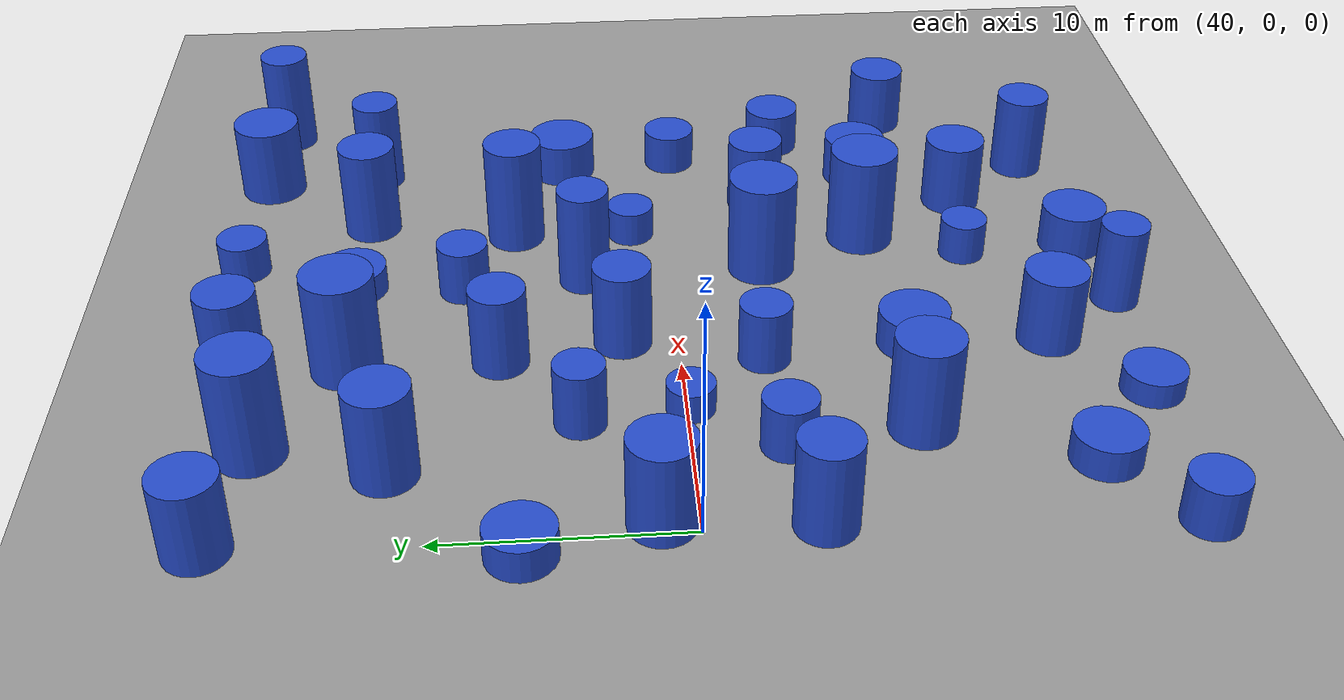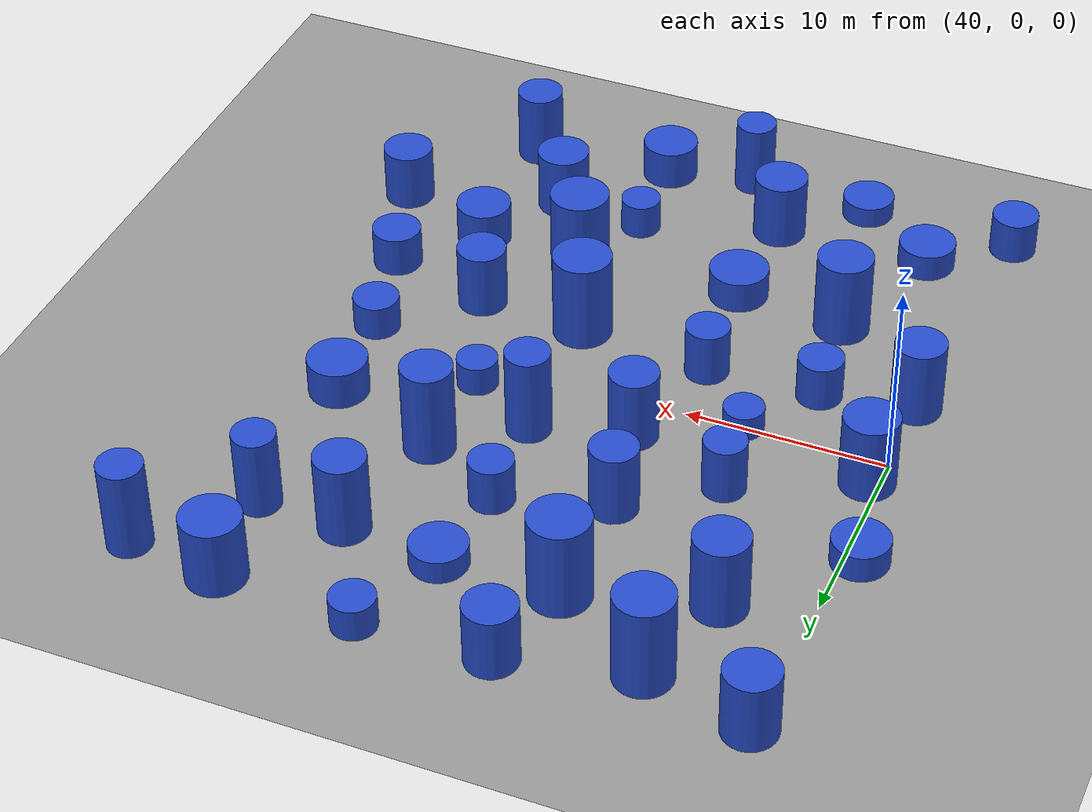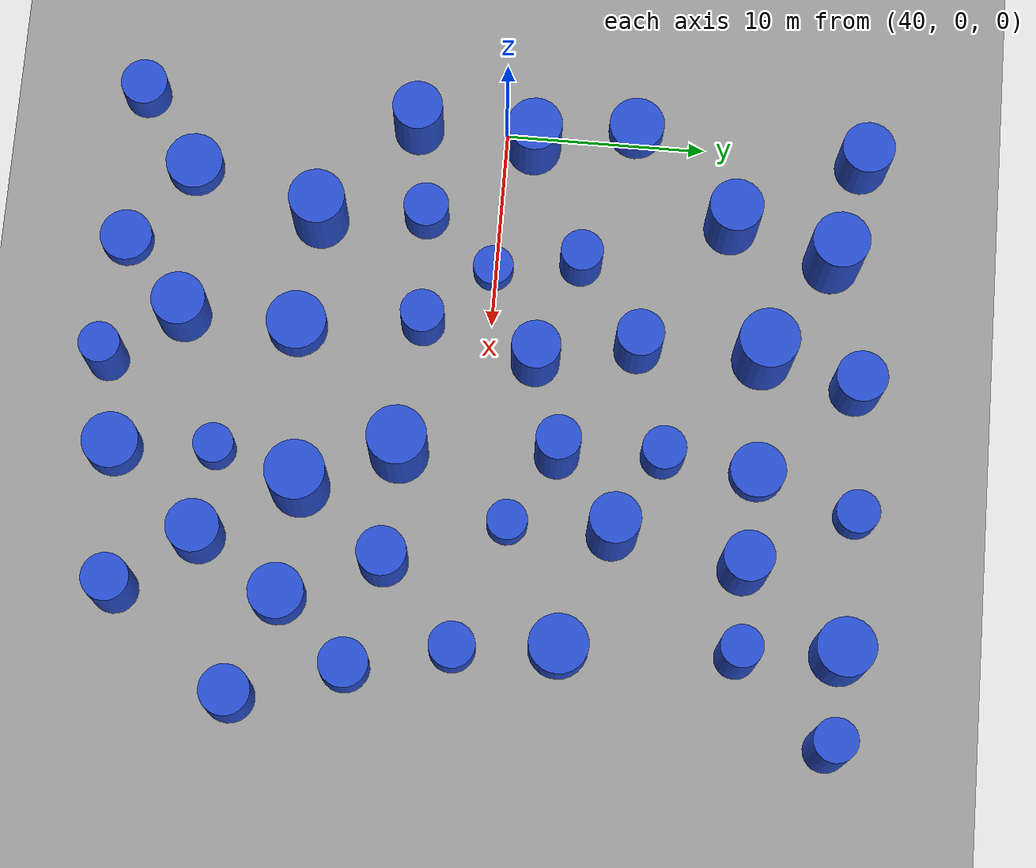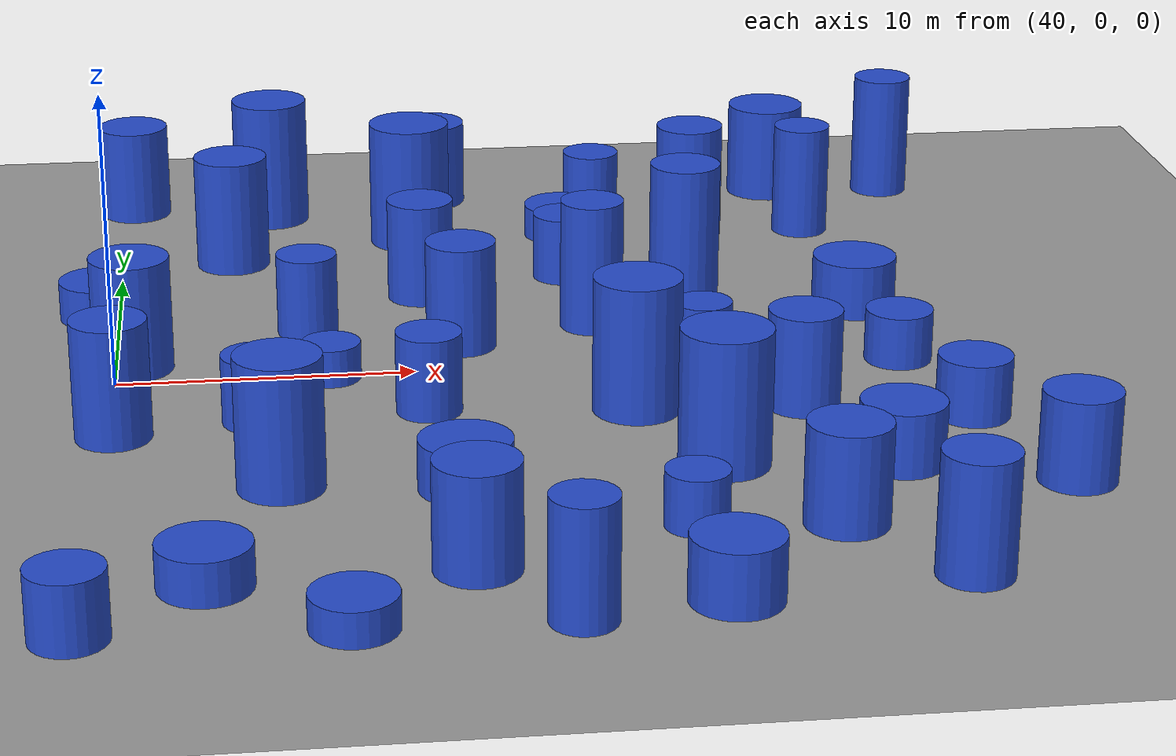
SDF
<sdf version="1.7">
 <world name="default">
  <model name="ground_plane_map">
   <static>1</static>
   <link name="link">
    <collision name="collision">
     <geometry><plane><normal>0 0 1</normal><size>110 50</size></plane></geometry>
     <surface>
      <contact><collide_without_contact>1</collide_without_contact></contact>
      <friction><ode><mu>100</mu><mu2>50</mu2></ode></friction>
     </surface>
    </collision>
    <visual name="visual">
     <cast_shadows>0</cast_shadows>
     <geometry><plane><normal>0 0 1</normal><size>110 50</size></plane></geometry>
     <material>
      <script><uri>file://media/materials/scripts/gazebo.material</uri><name>Gazebo/Grey</name></script>
     </material>
    </visual>
   </link>
   <pose>53 0 0 0 -0 0</pose>
  </model>
  <model name="0">
   <static>1</static>
   <link name="link">
    <inertial>
     <mass>2</mass>
     <inertia><ixx>4.14481</ixx><ixy>0</ixy><ixz>0</ixz><iyy>4.14481</iyy><iyz>0</iyz><izz>1.90158</izz></inertia>
    </inertial>
    <collision name="collision">
     <geometry><cylinder><length>4.37769</length><radius>1.37898</radius></cylinder></geometry>
     <surface><contact><collide_without_contact>1</collide_without_contact></contact></surface>
    </collision>
    <visual name="visual">
     <geometry><cylinder><length>4.37769</length><radius>1.37898</radius></cylinder></geometry>
     <material>
      <script><uri>file://media/materials/scripts/gazebo.material</uri><name>Gazebo/Blue</name></script>
     </material>
    </visual>
    <gravity>0</gravity>
   </link>
   <pose>45.2762 -8.97843 2.18884 0 -0 0</pose>
  </model>
  <model name="3">
   <static>1</static>
   <link name="link">
    <inertial>
     <mass>2</mass>
     <inertia><ixx>1.70358</ixx><ixy>0</ixy><ixz>0</ixz><iyy>1.70358</iyy><iyz>0</iyz><izz>1.89861</izz></inertia>
    </inertial>
    <collision name="collision">
     <geometry><cylinder><length>2.12735</length><radius>1.3779</radius></cylinder></geometry>
     <surface><contact><collide_without_contact>1</collide_without_contact></contact></surface>
    </collision>
    <visual name="visual">
     <geometry><cylinder><length>2.12735</length><radius>1.3779</radius></cylinder></geometry>
     <material>
      <script><uri>file://media/materials/scripts/gazebo.material</uri><name>Gazebo/Blue</name></script>
     </material>
    </visual>
    <gravity>0</gravity>
   </link>
   <pose>64.5107 -9.29219 1.06368 0 -0 0</pose>
  </model>
  <model name="6">
   <static>1</static>
   <link name="link">
    <inertial>
     <mass>2</mass>
     <inertia><ixx>1.94226</ixx><ixy>0</ixy><ixz>0</ixz><iyy>1.94226</iyy><iyz>0</iyz><izz>1.10324</izz></inertia>
    </inertial>
    <collision name="collision">
     <geometry><cylinder><length>2.88857</length><radius>1.05035</radius></cylinder></geometry>
     <surface><contact><collide_without_contact>1</collide_without_contact></contact></surface>
    </collision>
    <visual name="visual">
     <geometry><cylinder><length>2.88857</length><radius>1.05035</radius></cylinder></geometry>
     <material>
      <script><uri>file://media/materials/scripts/gazebo.material</uri><name>Gazebo/Blue</name></script>
     </material>
    </visual>
    <gravity>0</gravity>
   </link>
   <pose>46.5555 4.20254 1.44429 0 -0 0</pose>
  </model>
  <model name="7">
   <static>1</static>
   <link name="link">
    <inertial>
     <mass>2</mass>
     <inertia><ixx>4.70701</ixx><ixy>0</ixy><ixz>0</ixz><iyy>4.70701</iyy><iyz>0</iyz><izz>2.20019</izz></inertia>
    </inertial>
    <collision name="collision">
     <geometry><cylinder><length>4.65204</length><radius>1.4833</radius></cylinder></geometry>
     <surface><contact><collide_without_contact>1</collide_without_contact></contact></surface>
    </collision>
    <visual name="visual">
     <geometry><cylinder><length>4.65204</length><radius>1.4833</radius></cylinder></geometry>
     <material>
      <script><uri>file://media/materials/scripts/gazebo.material</uri><name>Gazebo/Blue</name></script>
     </material>
    </visual>
    <gravity>0</gravity>
   </link>
   <pose>50.7692 13.5287 2.32602 0 -0 0</pose>
  </model>
  <model name="8">
   <static>1</static>
   <link name="link">
    <inertial>
     <mass>2</mass>
     <inertia><ixx>1.67846</ixx><ixy>0</ixy><ixz>0</ixz><iyy>1.67846</iyy><iyz>0</iyz><izz>1.96705</izz></inertia>
    </inertial>
    <collision name="collision">
     <geometry><cylinder><length>2.04197</length><radius>1.40251</radius></cylinder></geometry>
     <surface><contact><collide_without_contact>1</collide_without_contact></contact></surface>
    </collision>
    <visual name="visual">
     <geometry><cylinder><length>2.04197</length><radius>1.40251</radius></cylinder></geometry>
     <material>
      <script><uri>file://media/materials/scripts/gazebo.material</uri><name>Gazebo/Blue</name></script>
     </material>
    </visual>
    <gravity>0</gravity>
   </link>
   <pose>57.7333 -18.0752 1.02099 0 -0 0</pose>
  </model>
  <model name="15">
   <static>1</static>
   <link name="link">
    <inertial>
     <mass>2</mass>
     <inertia><ixx>2.61819</ixx><ixy>0</ixy><ixz>0</ixz><iyy>2.61819</iyy><iyz>0</iyz><izz>1.49449</izz></inertia>
    </inertial>
    <collision name="collision">
     <geometry><cylinder><length>3.35047</length><radius>1.22249</radius></cylinder></geometry>
     <surface><contact><collide_without_contact>1</collide_without_contact></contact></surface>
    </collision>
    <visual name="visual">
     <geometry><cylinder><length>3.35047</length><radius>1.22249</radius></cylinder></geometry>
     <material>
      <script><uri>file://media/materials/scripts/gazebo.material</uri><name>Gazebo/Blue</name></script>
     </material>
    </visual>
    <gravity>0</gravity>
   </link>
   <pose>62.3933 -4.32254 1.67523 0 -0 0</pose>
  </model>
  <model name="17">
   <static>1</static>
   <link name="link">
    <inertial>
     <mass>2</mass>
     <inertia><ixx>2.86724</ixx><ixy>0</ixy><ixz>0</ixz><iyy>2.86724</iyy><iyz>0</iyz><izz>1.76446</izz></inertia>
    </inertial>
    <collision name="collision">
     <geometry><cylinder><length>3.45109</length><radius>1.32833</radius></cylinder></geometry>
     <surface><contact><collide_without_contact>1</collide_without_contact></contact></surface>
    </collision>
    <visual name="visual">
     <geometry><cylinder><length>3.45109</length><radius>1.32833</radius></cylinder></geometry>
     <material>
      <script><uri>file://media/materials/scripts/gazebo.material</uri><name>Gazebo/Blue</name></script>
     </material>
    </visual>
    <gravity>0</gravity>
   </link>
   <pose>50.7154 -15.3173 1.72555 0 -0 0</pose>
  </model>
  <model name="19">
   <static>1</static>
   <link name="link">
    <inertial>
     <mass>2</mass>
     <inertia><ixx>4.58352</ixx><ixy>0</ixy><ixz>0</ixz><iyy>4.58352</iyy><iyz>0</iyz><izz>2.1361</izz></inertia>
    </inertial>
    <collision name="collision">
     <geometry><cylinder><length>4.59269</length><radius>1.46154</radius></cylinder></geometry>
     <surface><contact><collide_without_contact>1</collide_without_contact></contact></surface>
    </collision>
    <visual name="visual">
     <geometry><cylinder><length>4.59269</length><radius>1.46154</radius></cylinder></geometry>
     <material>
      <script><uri>file://media/materials/scripts/gazebo.material</uri><name>Gazebo/Blue</name></script>
     </material>
    </visual>
    <gravity>0</gravity>
   </link>
   <pose>56.9413 -4.03041 2.29635 0 -0 0</pose>
  </model>
  <model name="21">
   <static>1</static>
   <link name="link">
    <inertial>
     <mass>2</mass>
     <inertia><ixx>3.44477</ixx><ixy>0</ixy><ixz>0</ixz><iyy>3.44477</iyy><iyz>0</iyz><izz>1.08407</izz></inertia>
    </inertial>
    <collision name="collision">
     <geometry><cylinder><length>4.1733</length><radius>1.04119</radius></cylinder></geometry>
     <surface><contact><collide_without_contact>1</collide_without_contact></contact></surface>
    </collision>
    <visual name="visual">
     <geometry><cylinder><length>4.1733</length><radius>1.04119</radius></cylinder></geometry>
     <material>
      <script><uri>file://media/materials/scripts/gazebo.material</uri><name>Gazebo/Blue</name></script>
     </material>
    </visual>
    <gravity>0</gravity>
   </link>
   <pose>65.7437 13.0845 2.08665 0 -0 0</pose>
  </model>
  <model name="26">
   <static>1</static>
   <link name="link">
    <inertial>
     <mass>2</mass>
     <inertia><ixx>2.93772</ixx><ixy>0</ixy><ixz>0</ixz><iyy>2.93772</iyy><iyz>0</iyz><izz>1.69825</izz></inertia>
    </inertial>
    <collision name="collision">
     <geometry><cylinder><length>3.54</length><radius>1.30317</radius></cylinder></geometry>
     <surface><contact><collide_without_contact>1</collide_without_contact></contact></surface>
    </collision>
    <visual name="visual">
     <geometry><cylinder><length>3.54</length><radius>1.30317</radius></cylinder></geometry>
     <material>
      <script><uri>file://media/materials/scripts/gazebo.material</uri><name>Gazebo/Blue</name></script>
     </material>
    </visual>
    <gravity>0</gravity>
   </link>
   <pose>40.3525 17.9683 1.77 0 -0 0</pose>
  </model>
  <model name="32">
   <static>1</static>
   <link name="link">
    <inertial>
     <mass>2</mass>
     <inertia><ixx>4.22923</ixx><ixy>0</ixy><ixz>0</ixz><iyy>4.22923</iyy><iyz>0</iyz><izz>1.1766</izz></inertia>
    </inertial>
    <collision name="collision">
     <geometry><cylinder><length>4.67393</length><radius>1.08471</radius></cylinder></geometry>
     <surface><contact><collide_without_contact>1</collide_without_contact></contact></surface>
    </collision>
    <visual name="visual">
     <geometry><cylinder><length>4.67393</length><radius>1.08471</radius></cylinder></geometry>
     <material>
      <script><uri>file://media/materials/scripts/gazebo.material</uri><name>Gazebo/Blue</name></script>
     </material>
    </visual>
    <gravity>0</gravity>
   </link>
   <pose>69.8895 17.6498 2.33696 0 -0 0</pose>
  </model>
  <model name="34">
   <static>1</static>
   <link name="link">
    <inertial>
     <mass>2</mass>
     <inertia><ixx>1.86936</ixx><ixy>0</ixy><ixz>0</ixz><iyy>1.86936</iyy><iyz>0</iyz><izz>1.18246</izz></inertia>
    </inertial>
    <collision name="collision">
     <geometry><cylinder><length>2.76926</length><radius>1.08741</radius></cylinder></geometry>
     <surface><contact><collide_without_contact>1</collide_without_contact></contact></surface>
    </collision>
    <visual name="visual">
     <geometry><cylinder><length>2.76926</length><radius>1.08741</radius></cylinder></geometry>
     <material>
      <script><uri>file://media/materials/scripts/gazebo.material</uri><name>Gazebo/Blue</name></script>
     </material>
    </visual>
    <gravity>0</gravity>
   </link>
   <pose>50.2243 -3.40785 1.38463 0 -0 0</pose>
  </model>
  <model name="37">
   <static>1</static>
   <link name="link">
    <inertial>
     <mass>2</mass>
     <inertia><ixx>1.73073</ixx><ixy>0</ixy><ixz>0</ixz><iyy>1.73073</iyy><iyz>0</iyz><izz>2.18024</izz></inertia>
    </inertial>
    <collision name="collision">
     <geometry><cylinder><length>1.96052</length><radius>1.47656</radius></cylinder></geometry>
     <surface><contact><collide_without_contact>1</collide_without_contact></contact></surface>
    </collision>
    <visual name="visual">
     <geometry><cylinder><length>1.96052</length><radius>1.47656</radius></cylinder></geometry>
     <material>
      <script><uri>file://media/materials/scripts/gazebo.material</uri><name>Gazebo/Blue</name></script>
     </material>
    </visual>
    <gravity>0</gravity>
   </link>
   <pose>65.9798 4.48552 0.980261 0 -0 0</pose>
  </model>
  <model name="39">
   <static>1</static>
   <link name="link">
    <inertial>
     <mass>2</mass>
     <inertia><ixx>1.53761</ixx><ixy>0</ixy><ixz>0</ixz><iyy>1.53761</iyy><iyz>0</iyz><izz>1.25375</izz></inertia>
    </inertial>
    <collision name="collision">
     <geometry><cylinder><length>2.33761</length><radius>1.11971</radius></cylinder></geometry>
     <surface><contact><collide_without_contact>1</collide_without_contact></contact></surface>
    </collision>
    <visual name="visual">
     <geometry><cylinder><length>2.33761</length><radius>1.11971</radius></cylinder></geometry>
     <material>
      <script><uri>file://media/materials/scripts/gazebo.material</uri><name>Gazebo/Blue</name></script>
     </material>
    </visual>
    <gravity>0</gravity>
   </link>
   <pose>44.6323 -3.69045 1.1688 0 -0 0</pose>
  </model>
  <model name="40">
   <static>1</static>
   <link name="link">
    <inertial>
     <mass>2</mass>
     <inertia><ixx>3.14692</ixx><ixy>0</ixy><ixz>0</ixz><iyy>3.14692</iyy><iyz>0</iyz><izz>1.46195</izz></inertia>
    </inertial>
    <collision name="collision">
     <geometry><cylinder><length>3.80732</length><radius>1.20911</radius></cylinder></geometry>
     <surface><contact><collide_without_contact>1</collide_without_contact></contact></surface>
    </collision>
    <visual name="visual">
     <geometry><cylinder><length>3.80732</length><radius>1.20911</radius></cylinder></geometry>
     <material>
      <script><uri>file://media/materials/scripts/gazebo.material</uri><name>Gazebo/Blue</name></script>
     </material>
    </visual>
    <gravity>0</gravity>
   </link>
   <pose>51.7574 2.30771 1.90366 0 -0 0</pose>
  </model>
  <model name="44">
   <static>1</static>
   <link name="link">
    <inertial>
     <mass>2</mass>
     <inertia><ixx>1.34512</ixx><ixy>0</ixy><ixz>0</ixz><iyy>1.34512</iyy><iyz>0</iyz><izz>2.03624</izz></inertia>
    </inertial>
    <collision name="collision">
     <geometry><cylinder><length>1.40072</length><radius>1.42697</radius></cylinder></geometry>
     <surface><contact><collide_without_contact>1</collide_without_contact></contact></surface>
    </collision>
    <visual name="visual">
     <geometry><cylinder><length>1.40072</length><radius>1.42697</radius></cylinder></geometry>
     <material>
      <script><uri>file://media/materials/scripts/gazebo.material</uri><name>Gazebo/Blue</name></script>
     </material>
    </visual>
    <gravity>0</gravity>
   </link>
   <pose>42.9644 -15.5514 0.700361 0 -0 0</pose>
  </model>
  <model name="45">
   <static>1</static>
   <link name="link">
    <inertial>
     <mass>2</mass>
     <inertia><ixx>1.48634</ixx><ixy>0</ixy><ixz>0</ixz><iyy>1.48634</iyy><iyz>0</iyz><izz>1.50428</izz></inertia>
    </inertial>
    <collision name="collision">
     <geometry><cylinder><length>2.09886</length><radius>1.22649</radius></cylinder></geometry>
     <surface><contact><collide_without_contact>1</collide_without_contact></contact></surface>
    </collision>
    <visual name="visual">
     <geometry><cylinder><length>2.09886</length><radius>1.22649</radius></cylinder></geometry>
     <material>
      <script><uri>file://media/materials/scripts/gazebo.material</uri><name>Gazebo/Blue</name></script>
     </material>
    </visual>
    <gravity>0</gravity>
   </link>
   <pose>67.7085 -5.7427 1.04943 0 -0 0</pose>
  </model>
  <model name="48">
   <static>1</static>
   <link name="link">
    <inertial>
     <mass>2</mass>
     <inertia><ixx>3.5742</ixx><ixy>0</ixy><ixz>0</ixz><iyy>3.5742</iyy><iyz>0</iyz><izz>1.82429</izz></inertia>
    </inertial>
    <collision name="collision">
     <geometry><cylinder><length>3.99654</length><radius>1.35066</radius></cylinder></geometry>
     <surface><contact><collide_without_contact>1</collide_without_contact></contact></surface>
    </collision>
    <visual name="visual">
     <geometry><cylinder><length>3.99654</length><radius>1.35066</radius></cylinder></geometry>
     <material>
      <script><uri>file://media/materials/scripts/gazebo.material</uri><name>Gazebo/Blue</name></script>
     </material>
    </visual>
    <gravity>0</gravity>
   </link>
   <pose>40.5895 1.41469 1.99827 0 -0 0</pose>
  </model>
  <model name="50">
   <static>1</static>
   <link name="link">
    <inertial>
     <mass>2</mass>
     <inertia><ixx>3.18474</ixx><ixy>0</ixy><ixz>0</ixz><iyy>3.18474</iyy><iyz>0</iyz><izz>1.36686</izz></inertia>
    </inertial>
    <collision name="collision">
     <geometry><cylinder><length>3.874</length><radius>1.16913</radius></cylinder></geometry>
     <surface><contact><collide_without_contact>1</collide_without_contact></contact></surface>
    </collision>
    <visual name="visual">
     <geometry><cylinder><length>3.874</length><radius>1.16913</radius></cylinder></geometry>
     <material>
      <script><uri>file://media/materials/scripts/gazebo.material</uri><name>Gazebo/Blue</name></script>
     </material>
    </visual>
    <gravity>0</gravity>
   </link>
   <pose>64.772 -17.2791 1.937 0 -0 0</pose>
  </model>
  <model name="51">
   <static>1</static>
   <link name="link">
    <inertial>
     <mass>2</mass>
     <inertia><ixx>1.56822</ixx><ixy>0</ixy><ixz>0</ixz><iyy>1.56822</iyy><iyz>0</iyz><izz>2.22295</izz></inertia>
    </inertial>
    <collision name="collision">
     <geometry><cylinder><length>1.65544</length><radius>1.49096</radius></cylinder></geometry>
     <surface><contact><collide_without_contact>1</collide_without_contact></contact></surface>
    </collision>
    <visual name="visual">
     <geometry><cylinder><length>1.65544</length><radius>1.49096</radius></cylinder></geometry>
     <material>
      <script><uri>file://media/materials/scripts/gazebo.material</uri><name>Gazebo/Blue</name></script>
     </material>
    </visual>
    <gravity>0</gravity>
   </link>
   <pose>50.8719 -9.63558 0.827721 0 -0 0</pose>
  </model>
  <model name="58">
   <static>1</static>
   <link name="link">
    <inertial>
     <mass>2</mass>
     <inertia><ixx>2.27417</ixx><ixy>0</ixy><ixz>0</ixz><iyy>2.27417</iyy><iyz>0</iyz><izz>1.56081</izz></inertia>
    </inertial>
    <collision name="collision">
     <geometry><cylinder><length>2.99376</length><radius>1.24932</radius></cylinder></geometry>
     <surface><contact><collide_without_contact>1</collide_without_contact></contact></surface>
    </collision>
    <visual name="visual">
     <geometry><cylinder><length>2.99376</length><radius>1.24932</radius></cylinder></geometry>
     <material>
      <script><uri>file://media/materials/scripts/gazebo.material</uri><name>Gazebo/Blue</name></script>
     </material>
    </visual>
    <gravity>0</gravity>
   </link>
   <pose>69.5819 -11.1757 1.49688 0 -0 0</pose>
  </model>
  <model name="61">
   <static>1</static>
   <link name="link">
    <inertial>
     <mass>2</mass>
     <inertia><ixx>4.74433</ixx><ixy>0</ixy><ixz>0</ixz><iyy>4.74433</iyy><iyz>0</iyz><izz>1.56876</izz></inertia>
    </inertial>
    <collision name="collision">
     <geometry><cylinder><length>4.87439</length><radius>1.2525</radius></cylinder></geometry>
     <surface><contact><collide_without_contact>1</collide_without_contact></contact></surface>
    </collision>
    <visual name="visual">
     <geometry><cylinder><length>4.87439</length><radius>1.2525</radius></cylinder></geometry>
     <material>
      <script><uri>file://media/materials/scripts/gazebo.material</uri><name>Gazebo/Blue</name></script>
     </material>
    </visual>
    <gravity>0</gravity>
   </link>
   <pose>60.2022 6.69553 2.4372 0 -0 0</pose>
  </model>
  <model name="63">
   <static>1</static>
   <link name="link">
    <inertial>
     <mass>2</mass>
     <inertia><ixx>4.17057</ixx><ixy>0</ixy><ixz>0</ixz><iyy>4.17057</iyy><iyz>0</iyz><izz>1.21672</izz></inertia>
    </inertial>
    <collision name="collision">
     <geometry><cylinder><length>4.62312</length><radius>1.10305</radius></cylinder></geometry>
     <surface><contact><collide_without_contact>1</collide_without_contact></contact></surface>
    </collision>
    <visual name="visual">
     <geometry><cylinder><length>4.62312</length><radius>1.10305</radius></cylinder></geometry>
     <material>
      <script><uri>file://media/materials/scripts/gazebo.material</uri><name>Gazebo/Blue</name></script>
     </material>
    </visual>
    <gravity>0</gravity>
   </link>
   <pose>56.4635 3.72702 2.31156 0 -0 0</pose>
  </model>
  <model name="64">
   <static>1</static>
   <link name="link">
    <inertial>
     <mass>2</mass>
     <inertia><ixx>3.85583</ixx><ixy>0</ixy><ixz>0</ixz><iyy>3.85583</iyy><iyz>0</iyz><izz>1.54035</izz></inertia>
    </inertial>
    <collision name="collision">
     <geometry><cylinder><length>4.30279</length><radius>1.24111</radius></cylinder></geometry>
     <surface><contact><collide_without_contact>1</collide_without_contact></contact></surface>
    </collision>
    <visual name="visual">
     <geometry><cylinder><length>4.30279</length><radius>1.24111</radius></cylinder></geometry>
     <material>
      <script><uri>file://media/materials/scripts/gazebo.material</uri><name>Gazebo/Blue</name></script>
     </material>
    </visual>
    <gravity>0</gravity>
   </link>
   <pose>61.4244 13.1806 2.15139 0 -0 0</pose>
  </model>
  <model name="65">
   <static>1</static>
   <link name="link">
    <inertial>
     <mass>2</mass>
     <inertia><ixx>3.81159</ixx><ixy>0</ixy><ixz>0</ixz><iyy>3.81159</iyy><iyz>0</iyz><izz>1.76489</izz></inertia>
    </inertial>
    <collision name="collision">
     <geometry><cylinder><length>4.19224</length><radius>1.32849</radius></cylinder></geometry>
     <surface><contact><collide_without_contact>1</collide_without_contact></contact></surface>
    </collision>
    <visual name="visual">
     <geometry><cylinder><length>4.19224</length><radius>1.32849</radius></cylinder></geometry>
     <material>
      <script><uri>file://media/materials/scripts/gazebo.material</uri><name>Gazebo/Blue</name></script>
     </material>
    </visual>
    <gravity>0</gravity>
   </link>
   <pose>44.0516 11.5777 2.09612 0 -0 0</pose>
  </model>
  <model name="76">
   <static>1</static>
   <link name="link">
    <inertial>
     <mass>2</mass>
     <inertia><ixx>1.20703</ixx><ixy>0</ixy><ixz>0</ixz><iyy>1.20703</iyy><iyz>0</iyz><izz>1.31482</izz></inertia>
    </inertial>
    <collision name="collision">
     <geometry><cylinder><length>1.81596</length><radius>1.14666</radius></cylinder></geometry>
     <surface><contact><collide_without_contact>1</collide_without_contact></contact></surface>
    </collision>
    <visual name="visual">
     <geometry><cylinder><length>1.81596</length><radius>1.14666</radius></cylinder></geometry>
     <material>
      <script><uri>file://media/materials/scripts/gazebo.material</uri><name>Gazebo/Blue</name></script>
     </material>
    </visual>
    <gravity>0</gravity>
   </link>
   <pose>66.4155 -0.630155 0.907981 0 -0 0</pose>
  </model>
  <model name="77">
   <static>1</static>
   <link name="link">
    <inertial>
     <mass>2</mass>
     <inertia><ixx>1.04969</ixx><ixy>0</ixy><ixz>0</ixz><iyy>1.04969</iyy><iyz>0</iyz><izz>1.00184</izz></inertia>
    </inertial>
    <collision name="collision">
     <geometry><cylinder><length>1.81456</length><radius>1.00092</radius></cylinder></geometry>
     <surface><contact><collide_without_contact>1</collide_without_contact></contact></surface>
    </collision>
    <visual name="visual">
     <geometry><cylinder><length>1.81456</length><radius>1.00092</radius></cylinder></geometry>
     <material>
      <script><uri>file://media/materials/scripts/gazebo.material</uri><name>Gazebo/Blue</name></script>
     </material>
    </visual>
    <gravity>0</gravity>
   </link>
   <pose>57.4303 -13.063 0.90728 0 -0 0</pose>
  </model>
  <model name="82">
   <static>1</static>
   <link name="link">
    <inertial>
     <mass>2</mass>
     <inertia><ixx>2.67326</ixx><ixy>0</ixy><ixz>0</ixz><iyy>2.67326</iyy><iyz>0</iyz><izz>1.72547</izz></inertia>
    </inertial>
    <collision name="collision">
     <geometry><cylinder><length>3.29593</length><radius>1.31357</radius></cylinder></geometry>
     <surface><contact><collide_without_contact>1</collide_without_contact></contact></surface>
    </collision>
    <visual name="visual">
     <geometry><cylinder><length>3.29593</length><radius>1.31357</radius></cylinder></geometry>
     <material>
      <script><uri>file://media/materials/scripts/gazebo.material</uri><name>Gazebo/Blue</name></script>
     </material>
    </visual>
    <gravity>0</gravity>
   </link>
   <pose>61.867 -13.4717 1.64796 0 -0 0</pose>
  </model>
  <model name="83">
   <static>1</static>
   <link name="link">
    <inertial>
     <mass>2</mass>
     <inertia><ixx>2.94123</ixx><ixy>0</ixy><ixz>0</ixz><iyy>2.94123</iyy><iyz>0</iyz><izz>1.3854</izz></inertia>
    </inertial>
    <collision name="collision">
     <geometry><cylinder><length>3.67303</length><radius>1.17703</radius></cylinder></geometry>
     <surface><contact><collide_without_contact>1</collide_without_contact></contact></surface>
    </collision>
    <visual name="visual">
     <geometry><cylinder><length>3.67303</length><radius>1.17703</radius></cylinder></geometry>
     <material>
      <script><uri>file://media/materials/scripts/gazebo.material</uri><name>Gazebo/Blue</name></script>
     </material>
    </visual>
    <gravity>0</gravity>
   </link>
   <pose>50.7263 7.3295 1.83652 0 -0 0</pose>
  </model>
  <model name="87">
   <static>1</static>
   <link name="link">
    <inertial>
     <mass>2</mass>
     <inertia><ixx>1.28026</ixx><ixy>0</ixy><ixz>0</ixz><iyy>1.28026</iyy><iyz>0</iyz><izz>1.91192</izz></inertia>
    </inertial>
    <collision name="collision">
     <geometry><cylinder><length>1.39492</length><radius>1.38272</radius></cylinder></geometry>
     <surface><contact><collide_without_contact>1</collide_without_contact></contact></surface>
    </collision>
    <visual name="visual">
     <geometry><cylinder><length>1.39492</length><radius>1.38272</radius></cylinder></geometry>
     <material>
      <script><uri>file://media/materials/scripts/gazebo.material</uri><name>Gazebo/Blue</name></script>
     </material>
    </visual>
    <gravity>0</gravity>
   </link>
   <pose>39.2807 6.51166 0.697461 0 -0 0</pose>
  </model>
  <model name="91">
   <static>1</static>
   <link name="link">
    <inertial>
     <mass>2</mass>
     <inertia><ixx>1.57827</ixx><ixy>0</ixy><ixz>0</ixz><iyy>1.57827</iyy><iyz>0</iyz><izz>1.18476</izz></inertia>
    </inertial>
    <collision name="collision">
     <geometry><cylinder><length>2.43214</length><radius>1.08847</radius></cylinder></geometry>
     <surface><contact><collide_without_contact>1</collide_without_contact></contact></surface>
    </collision>
    <visual name="visual">
     <geometry><cylinder><length>2.43214</length><radius>1.08847</radius></cylinder></geometry>
     <material>
      <script><uri>file://media/materials/scripts/gazebo.material</uri><name>Gazebo/Blue</name></script>
     </material>
    </visual>
    <gravity>0</gravity>
   </link>
   <pose>56.0654 8.91251 1.21607 0 -0 0</pose>
  </model>
  <model name="95">
   <static>1</static>
   <link name="link">
    <inertial>
     <mass>2</mass>
     <inertia><ixx>4.81175</ixx><ixy>0</ixy><ixz>0</ixz><iyy>4.81175</iyy><iyz>0</iyz><izz>1.98583</izz></inertia>
    </inertial>
    <collision name="collision">
     <geometry><cylinder><length>4.78676</length><radius>1.40919</radius></cylinder></geometry>
     <surface><contact><collide_without_contact>1</collide_without_contact></contact></surface>
    </collision>
    <visual name="visual">
     <geometry><cylinder><length>4.78676</length><radius>1.40919</radius></cylinder></geometry>
     <material>
      <script><uri>file://media/materials/scripts/gazebo.material</uri><name>Gazebo/Blue</name></script>
     </material>
    </visual>
    <gravity>0</gravity>
   </link>
   <pose>45.6025 16.7238 2.39338 0 -0 0</pose>
  </model>
  <model name="96">
   <static>1</static>
   <link name="link">
    <inertial>
     <mass>2</mass>
     <inertia><ixx>1.06756</ixx><ixy>0</ixy><ixz>0</ixz><iyy>1.06756</iyy><iyz>0</iyz><izz>1.17707</izz></inertia>
    </inertial>
    <collision name="collision">
     <geometry><cylinder><length>1.69533</length><radius>1.08493</radius></cylinder></geometry>
     <surface><contact><collide_without_contact>1</collide_without_contact></contact></surface>
    </collision>
    <visual name="visual">
     <geometry><cylinder><length>1.69533</length><radius>1.08493</radius></cylinder></geometry>
     <material>
      <script><uri>file://media/materials/scripts/gazebo.material</uri><name>Gazebo/Blue</name></script>
     </material>
    </visual>
    <gravity>0</gravity>
   </link>
   <pose>58.3376 18.5402 0.847667 0 -0 0</pose>
  </model>
  <model name="102">
   <static>1</static>
   <link name="link">
    <inertial>
     <mass>2</mass>
     <inertia><ixx>3.47045</ixx><ixy>0</ixy><ixz>0</ixz><iyy>3.47045</iyy><iyz>0</iyz><izz>1.55045</izz></inertia>
    </inertial>
    <collision name="collision">
     <geometry><cylinder><length>4.02136</length><radius>1.24517</radius></cylinder></geometry>
     <surface><contact><collide_without_contact>1</collide_without_contact></contact></surface>
    </collision>
    <visual name="visual">
     <geometry><cylinder><length>4.02136</length><radius>1.24517</radius></cylinder></geometry>
     <material>
      <script><uri>file://media/materials/scripts/gazebo.material</uri><name>Gazebo/Blue</name></script>
     </material>
    </visual>
    <gravity>0</gravity>
   </link>
   <pose>40.0799 -4.45756 2.01068 0 -0 0</pose>
  </model>
  <model name="109">
   <static>1</static>
   <link name="link">
    <inertial>
     <mass>2</mass>
     <inertia><ixx>1.20427</ixx><ixy>0</ixy><ixz>0</ixz><iyy>1.20427</iyy><iyz>0</iyz><izz>1.92356</izz></inertia>
    </inertial>
    <collision name="collision">
     <geometry><cylinder><length>1.2062</length><radius>1.38693</radius></cylinder></geometry>
     <surface><contact><collide_without_contact>1</collide_without_contact></contact></surface>
    </collision>
    <visual name="visual">
     <geometry><cylinder><length>1.2062</length><radius>1.38693</radius></cylinder></geometry>
     <material>
      <script><uri>file://media/materials/scripts/gazebo.material</uri><name>Gazebo/Blue</name></script>
     </material>
    </visual>
    <gravity>0</gravity>
   </link>
   <pose>56.545 13.6199 0.6031 0 -0 0</pose>
  </model>
  <model name="110">
   <static>1</static>
   <link name="link">
    <inertial>
     <mass>2</mass>
     <inertia><ixx>4.51719</ixx><ixy>0</ixy><ixz>0</ixz><iyy>4.51719</iyy><iyz>0</iyz><izz>2.16428</izz></inertia>
    </inertial>
    <collision name="collision">
     <geometry><cylinder><length>4.53986</length><radius>1.47115</radius></cylinder></geometry>
     <surface><contact><collide_without_contact>1</collide_without_contact></contact></surface>
    </collision>
    <visual name="visual">
     <geometry><cylinder><length>4.53986</length><radius>1.47115</radius></cylinder></geometry>
     <material>
      <script><uri>file://media/materials/scripts/gazebo.material</uri><name>Gazebo/Blue</name></script>
     </material>
    </visual>
    <gravity>0</gravity>
   </link>
   <pose>59.0145 -8.73329 2.26993 0 -0 0</pose>
  </model>
  <model name="111">
   <static>1</static>
   <link name="link">
    <inertial>
     <mass>2</mass>
     <inertia>
      <ixx>0.905019</ixx>
      <ixy>0</ixy>
      <ixz>0</ixz>
      <iyy>0.905019</iyy>
      <iyz>0</iyz>
      <izz>1.01052</izz>
     </inertia>
    </inertial>
    <collision name="collision">
     <geometry><cylinder><length>1.54873</length><radius>1.00525</radius></cylinder></geometry>
     <surface><contact><collide_without_contact>1</collide_without_contact></contact></surface>
    </collision>
    <visual name="visual">
     <geometry><cylinder><length>1.54873</length><radius>1.00525</radius></cylinder></geometry>
     <material>
      <script><uri>file://media/materials/scripts/gazebo.material</uri><name>Gazebo/Blue</name></script>
     </material>
    </visual>
    <gravity>0</gravity>
   </link>
   <pose>60.06 1.54517 0.774364 0 -0 0</pose>
  </model>
  <model name="119">
   <static>1</static>
   <link name="link">
    <inertial>
     <mass>2</mass>
     <inertia><ixx>3.1728</ixx><ixy>0</ixy><ixz>0</ixz><iyy>3.1728</iyy><iyz>0</iyz><izz>2.10341</izz></inertia>
    </inertial>
    <collision name="collision">
     <geometry><cylinder><length>3.56743</length><radius>1.45031</radius></cylinder></geometry>
     <surface><contact><collide_without_contact>1</collide_without_contact></contact></surface>
    </collision>
    <visual name="visual">
     <geometry><cylinder><length>3.56743</length><radius>1.45031</radius></cylinder></geometry>
     <material>
      <script><uri>file://media/materials/scripts/gazebo.material</uri><name>Gazebo/Blue</name></script>
     </material>
    </visual>
    <gravity>0</gravity>
   </link>
   <pose>65.289 18.085 1.78372 0 -0 0</pose>
  </model>
  <model name="123">
   <static>1</static>
   <link name="link">
    <inertial>
     <mass>2</mass>
     <inertia><ixx>2.95718</ixx><ixy>0</ixy><ixz>0</ixz><iyy>2.95718</iyy><iyz>0</iyz><izz>1.03646</izz></inertia>
    </inertial>
    <collision name="collision">
     <geometry><cylinder><length>3.8254</length><radius>1.01807</radius></cylinder></geometry>
     <surface><contact><collide_without_contact>1</collide_without_contact></contact></surface>
    </collision>
    <visual name="visual">
     <geometry><cylinder><length>3.8254</length><radius>1.01807</radius></cylinder></geometry>
     <material>
      <script><uri>file://media/materials/scripts/gazebo.material</uri><name>Gazebo/Blue</name></script>
     </material>
    </visual>
    <gravity>0</gravity>
   </link>
   <pose>53.3231 -18.8537 1.9127 0 -0 0</pose>
  </model>
  <model name="125">
   <static>1</static>
   <link name="link">
    <inertial>
     <mass>2</mass>
     <inertia><ixx>2.5573</ixx><ixy>0</ixy><ixz>0</ixz><iyy>2.5573</iyy><iyz>0</iyz><izz>1.61206</izz></inertia>
    </inertial>
    <collision name="collision">
     <geometry><cylinder><length>3.24154</length><radius>1.26967</radius></cylinder></geometry>
     <surface><contact><collide_without_contact>1</collide_without_contact></contact></surface>
    </collision>
    <visual name="visual">
     <geometry><cylinder><length>3.24154</length><radius>1.26967</radius></cylinder></geometry>
     <material>
      <script><uri>file://media/materials/scripts/gazebo.material</uri><name>Gazebo/Blue</name></script>
     </material>
    </visual>
    <gravity>0</gravity>
   </link>
   <pose>51.9547 18.2329 1.62077 0 -0 0</pose>
  </model>
  <model name="126">
   <static>1</static>
   <link name="link">
    <inertial>
     <mass>2</mass>
     <inertia><ixx>0.775302</ixx><ixy>0</ixy><ixz>0</ixz><iyy>0.775302</iyy><iyz>0</iyz><izz>1</izz></inertia>
    </inertial>
    <collision name="collision">
     <geometry><cylinder><length>1.28523</length><radius>1</radius></cylinder></geometry>
     <surface><contact><collide_without_contact>1</collide_without_contact></contact></surface>
    </collision>
    <visual name="visual">
     <geometry><cylinder><length>1.28523</length><radius>1</radius></cylinder></geometry>
     <material>
      <script><uri>file://media/materials/scripts/gazebo.material</uri><name>Gazebo/Blue</name></script>
     </material>
    </visual>
    <gravity>0</gravity>
   </link>
   <pose>47.185 -0.141075 0.642615 0 -0 0</pose>
  </model>
  <model name="128">
   <static>1</static>
   <link name="link">
    <inertial>
     <mass>2</mass>
     <inertia><ixx>1.47225</ixx><ixy>0</ixy><ixz>0</ixz><iyy>1.47225</iyy><iyz>0</iyz><izz>1.35323</izz></inertia>
    </inertial>
    <collision name="collision">
     <geometry><cylinder><length>2.1849</length><radius>1.16329</radius></cylinder></geometry>
     <surface><contact><collide_without_contact>1</collide_without_contact></contact></surface>
    </collision>
    <visual name="visual">
     <geometry><cylinder><length>2.1849</length><radius>1.16329</radius></cylinder></geometry>
     <material>
      <script><uri>file://media/materials/scripts/gazebo.material</uri><name>Gazebo/Blue</name></script>
     </material>
    </visual>
    <gravity>0</gravity>
   </link>
   <pose>39.2662 -18.3762 1.09245 0 -0 0</pose>
  </model>
  <model name="129">
   <static>1</static>
   <link name="link">
    <inertial>
     <mass>2</mass>
     <inertia><ixx>1.05429</ixx><ixy>0</ixy><ixz>0</ixz><iyy>1.05429</iyy><iyz>0</iyz><izz>1.69648</izz></inertia>
    </inertial>
    <collision name="collision">
     <geometry><cylinder><length>1.1119</length><radius>1.30249</radius></cylinder></geometry>
     <surface><contact><collide_without_contact>1</collide_without_contact></contact></surface>
    </collision>
    <visual name="visual">
     <geometry><cylinder><length>1.1119</length><radius>1.30249</radius></cylinder></geometry>
     <material>
      <script><uri>file://media/materials/scripts/gazebo.material</uri><name>Gazebo/Blue</name></script>
     </material>
    </visual>
    <gravity>0</gravity>
   </link>
   <pose>47.0205 -18.5846 0.555951 0 -0 0</pose>
  </model>
 </world>
</sdf>
